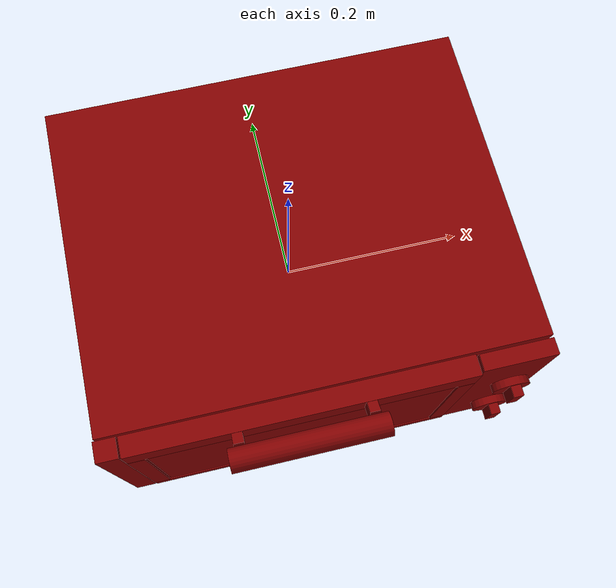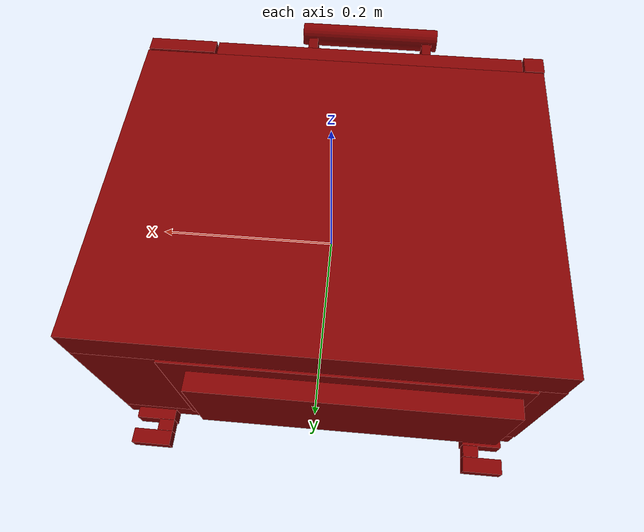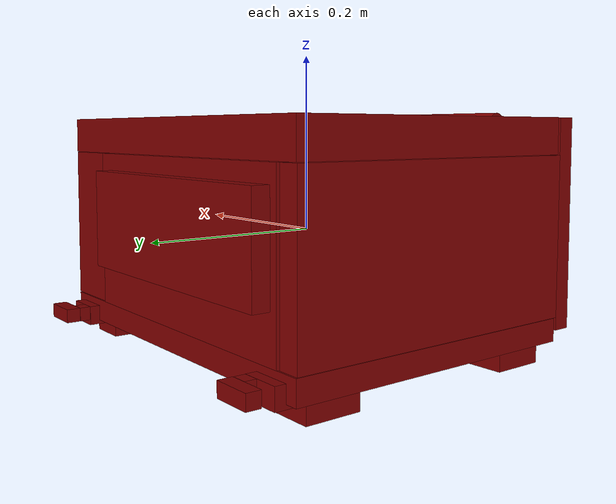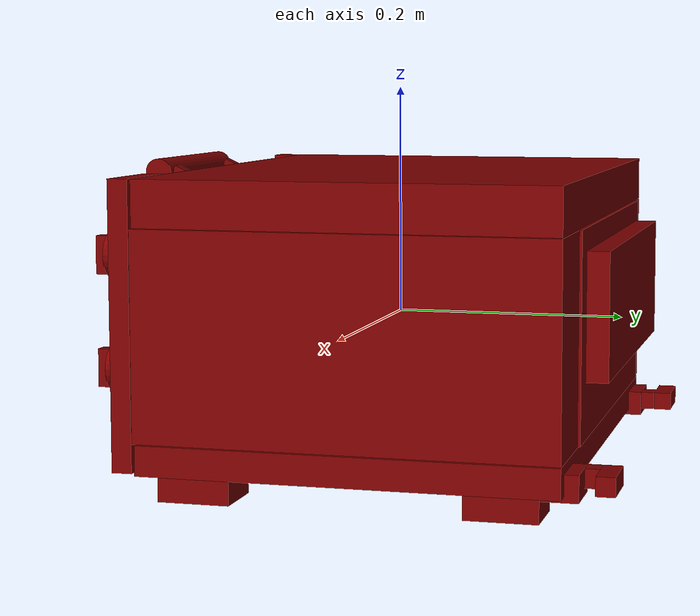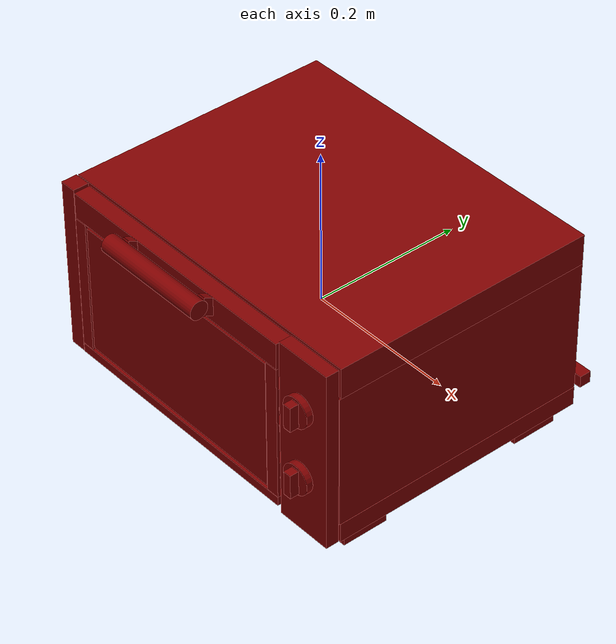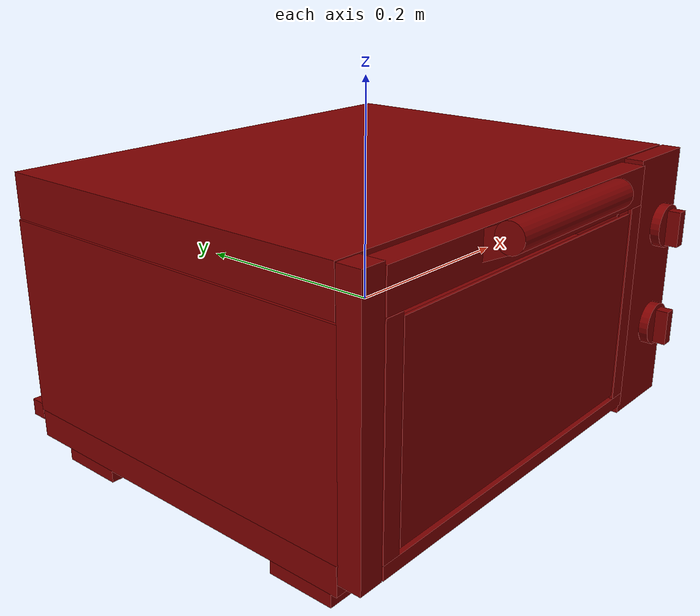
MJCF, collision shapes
<?xml version='1.0' encoding='UTF-8'?>
<mujoco model="model">
  <compiler angle="radian"/>
  <asset>
    <mesh file="visuals/Body001.obj" name="Body001_vis"/>
    <mesh file="visuals/Door001.obj" name="Door001_vis"/>
    <mesh file="visuals/Door001_Clear.obj" name="Door001_Clear_vis"/>
    <mesh file="visuals/Knob001.obj" name="Knob001_vis"/>
    <mesh file="visuals/Knob002.obj" name="Knob002_vis"/>
    <mesh file="visuals/Shelf001.obj" name="Shelf001_vis"/>
    <mesh file="visuals/Shelf002.obj" name="Shelf002_vis"/>
    <texture file="visuals/T_BC001.png" name="Body001_material" type="2d"/>
    <material name="Body001_material" rgba="1 1 1 1.0" texture="Body001_material" shininess="0.6668214201927185" specular="1.5"/>
    <texture file="visuals/T_BC001.png" name="Door001_material" type="2d"/>
    <material name="Door001_material" rgba="1 1 1 1.0" texture="Door001_material" shininess="0.6668214201927185" specular="1"/>
    <texture file="visuals/T_BC001.png" name="Door001_Clear_material" type="2d"/>
    <material name="Door001_Clear_material" rgba="1 1 1 0.800000011920929" texture="Door001_Clear_material" shininess="0.6668214201927185" specular="0.3103448502657381"/>
    <texture file="visuals/T_BC001.png" name="Knob001_material" type="2d"/>
    <material name="Knob001_material" rgba="1 1 1 1.0" texture="Knob001_material" shininess="0.6668214201927185" specular="0.3103448502657381"/>
    <texture file="visuals/T_BC001.png" name="Knob002_material" type="2d"/>
    <material name="Knob002_material" rgba="1 1 1 1.0" texture="Knob002_material" shininess="0.6668214201927185" specular="0.3103448502657381"/>
    <texture file="visuals/T_BC001.png" name="Shelf001_material" type="2d"/>
    <material name="Shelf001_material" rgba="1 1 1 1.0" texture="Shelf001_material" shininess="0.6668214201927185" specular="2"/>
    <texture file="visuals/T_BC001.png" name="Shelf002_material" type="2d"/>
    <material name="Shelf002_material" rgba="1 1 1 1.0" texture="Shelf002_material" shininess="0.6668214201927185" specular="2"/>
  </asset>
  <default>
    <default class="visual">
      <geom conaffinity="0" contype="0" group="1" type="mesh"/>
    </default>
    <default class="collision">
      <geom group="0" rgba="0.5 0 0 0.5"/>
    </default>
    <default class="spawn">
      <geom group="0" rgba="1 1 1 0.5" contype="0" conaffinity="0"/>
      <site group="0" rgba="1 1 1 0.5"/>
    </default>
    <default class="region">
      <geom group="1" conaffinity="0" contype="0" rgba="0 1 0 0"/>
    </default>
  </default>
  <worldbody>
    <body>
      <body name="object">
        <geom mesh="Body001_vis" type="mesh" solimp="0.998 0.998 0.001" solref="0.001 1" density="100" friction="0.95 0.3 0.1" class="visual" material="Body001_material"/>
        <geom class="collision" type="box" pos="0.0004402888298500329 0.010045657865703106 0.10885252803564072" size="0.22454264760017395 0.17522424459457397 0.01976315677165985" quat="1.0 0.0 0.0 0.0"/>
        <geom class="collision" type="box" pos="0.0004402888298500329 0.010045657865703106 -0.10062731802463531" size="0.22454264760017395 0.17522424459457397 0.012706412933766842" quat="1.0 0.0 0.0 0.0"/>
        <geom class="collision" type="box" pos="-0.18890202045440674 -0.11935637891292572 -0.1252499371767044" size="0.02434260956943035 0.03055659867823124 0.011036461219191551" quat="1.0 0.0 0.0 0.0"/>
        <geom class="collision" type="box" pos="-0.18890202045440674 0.13585886359214783 -0.125095397233963" size="0.02434260956943035 0.03055659867823124 0.010881921276450157" quat="1.0 0.0 0.0 0.0"/>
        <geom class="collision" type="box" pos="0.18905308842658997 0.13585886359214783 -0.125095397233963" size="0.02434260956943035 0.03055659867823124 0.010881921276450157" quat="1.0 0.0 0.0 0.0"/>
        <geom class="collision" type="box" pos="0.18905308842658997 -0.11935637891292572 -0.1252499371767044" size="0.02434260956943035 0.03055659867823124 0.011036461219191551" quat="1.0 0.0 0.0 0.0"/>
        <geom class="collision" type="box" pos="0.18555918335914612 0.0089851263910532 0.0007319003343582153" size="0.03942372649908066 0.1762847751379013 0.0876837819814682" quat="1.0 0.0 0.0 0.0"/>
        <geom class="collision" type="box" pos="-0.21336719393730164 0.0089851263910532 0.0007318967254832387" size="0.011907530017197132 0.1762847751379013 0.0876837819814682" quat="1.0 0.0 0.0 0.0"/>
        <geom class="collision" type="box" pos="-0.02708853967487812 0.1616283506155014 0.0007318967254832387" size="0.17258717119693756 0.025910113006830215 0.0876837819814682" quat="1.0 0.0 0.0 0.0"/>
        <geom class="collision" type="box" pos="0.1894703209400177 0.18198078870773315 -0.10667018592357635" size="0.021808959543704987 0.015137911774218082 0.011139695532619953" quat="1.0 0.0 0.0 0.0"/>
        <geom class="collision" type="box" pos="0.1894703209400177 0.21774496138095856 -0.10345733165740967" size="0.021808959543704987 0.00792873464524746 0.007926847785711288" quat="1.0 0.0 0.0 0.0"/>
        <geom class="collision" type="box" pos="0.17624805867671967 0.2034703940153122 -0.10345733165740967" size="0.008586686104536057 0.006191295105963945 0.007926847785711288" quat="1.0 0.0 0.0 0.0"/>
        <geom class="collision" type="box" pos="-0.17602120339870453 0.2034703940153122 -0.10345733165740967" size="0.008586686104536057 0.006191295105963945 0.007926847785711288" quat="1.0 0.0 0.0 0.0"/>
        <geom class="collision" type="box" pos="-0.1887224018573761 0.2179938405752182 -0.10345733165740967" size="0.021808959543704987 0.00792873464524746 0.007926847785711288" quat="1.0 0.0 0.0 0.0"/>
        <geom class="collision" type="box" pos="-0.1887224018573761 0.18198078870773315 -0.10667018592357635" size="0.021808959543704987 0.015137911774218082 0.011139695532619953" quat="1.0 0.0 0.0 0.0"/>
        <geom class="collision" type="box" pos="-0.2143566906452179 -0.17723454535007477 0.013637062162160873" size="0.010918035171926022 0.01031876727938652 0.11492250114679337" quat="1.0 0.0 0.0 0.0"/>
        <geom class="collision" type="box" pos="0.1867937594652176 -0.1765420138835907 0.008498180657625198" size="0.03787625953555107 0.008540074340999126 0.12006138265132904" quat="1.0 0.0 0.0 0.0"/>
        <geom class="collision" type="box" pos="-0.1954219490289688 -0.0036159383598715067 -0.025887541472911835" size="0.005505953915417194 0.1272565871477127 0.00450934749096632" quat="1.0 0.0 0.0 0.0"/>
        <geom class="collision" type="box" pos="-0.1954219490289688 -0.0036159383598715067 0.04098421335220337" size="0.005505953915417194 0.1272565871477127 0.00592554546892643" quat="1.0 0.0 0.0 0.0"/>
        <geom class="collision" type="box" pos="0.14067420363426208 -0.0036159383598715067 0.04098421335220337" size="0.005505953915417194 0.1272565871477127 0.00592554546892643" quat="1.0 0.0 0.0 0.0"/>
        <geom class="collision" type="box" pos="0.14067420363426208 -0.0036159383598715067 -0.025887541472911835" size="0.005505953915417194 0.1272565871477127 0.00450934749096632" quat="1.0 0.0 0.0 0.0"/>
        <geom class="collision" type="box" pos="0.1404481828212738 -0.12228400260210037 -0.06994109600782394" size="0.005731981247663498 0.008588536642491817 0.01425912231206894" quat="1.0 0.0 0.0 0.0"/>
        <geom class="collision" type="box" pos="-0.19614183902740479 -0.12228400260210037 -0.06994109600782394" size="0.005731981247663498 0.008588536642491817 0.01425912231206894" quat="1.0 0.0 0.0 0.0"/>
        <geom class="collision" type="box" pos="-0.0279858261346817 -0.12210918962955475 -0.07012439519166946" size="0.16276955604553223 0.005464079324156046 0.005500618368387222" quat="1.0 0.0 0.0 0.0"/>
        <geom class="collision" type="box" pos="-0.0279858261346817 0.11244776844978333 -0.07012439519166946" size="0.16276955604553223 0.007923397235572338 0.005500618368387222" quat="1.0 0.0 0.0 0.0"/>
        <geom class="collision" type="box" pos="-0.19614183902740479 0.1122729554772377 -0.06994109600782394" size="0.005731981247663498 0.006129218265414238 0.01425912231206894" quat="1.0 0.0 0.0 0.0"/>
        <geom class="collision" type="box" pos="0.1404481828212738 0.1122729554772377 -0.06994109600782394" size="0.005731981247663498 0.011047854088246822 0.01425912231206894" quat="1.0 0.0 0.0 0.0"/>
        <geom class="collision" type="box" pos="-0.03499678522348404 0.19661979377269745 0.015569886192679405" size="0.1559271663427353 0.00983437616378069 0.05393679067492485" quat="1.0 0.0 0.0 0.0"/>
        <body name="Door001">
          <joint axis="1.0 0.0 0.0" pos="-0.027686558663845062 -0.16469235718250275 -0.11179716140031815" limited="true" name="Door001_joint" range="0.0 1.5707963267948966" type="hinge" damping="1" frictionloss="1" armature=".01" stiffness="0.4" springref="-0.4"/>
          <geom mesh="Door001_vis" type="mesh" solimp="0.998 0.998 0.001" solref="0.001 1" density="100" friction="0.95 0.3 0.1" class="visual" material="Door001_material"/>
          <geom class="collision" type="box" pos="-0.19373668730258942 -0.18622271716594696 0.0010078526102006435" size="0.008691618219017982 0.0017727639060467482 0.08988409489393234" quat="1.0 0.0 0.0 0.0"/>
          <geom class="collision" type="box" pos="0.13829100131988525 -0.18622271716594696 0.0010078526102006435" size="0.008691618219017982 0.0017727639060467482 0.08988409489393234" quat="1.0 0.0 0.0 0.0"/>
          <geom class="collision" type="box" pos="-0.02755201980471611 -0.17721495032310486 -0.09515944123268127" size="0.1745843142271042 0.01078052818775177 0.006002516485750675" quat="1.0 0.0 0.0 0.0"/>
          <geom class="collision" type="box" pos="-0.02755201980471611 -0.17708101868629456 0.10838085412979126" size="0.1745843142271042 0.010646594688296318 0.017008749768137932" quat="1.0 0.0 0.0 0.0"/>
          <geom class="collision" type="cylinder" pos="-0.027476372197270393 -0.21209047734737396 0.12428169697523117" size="0.011990537866950035 0.07735488563776016" quat="0.4999999701976776 0.5 0.5 0.5"/>
          <geom class="collision" type="box" pos="0.037739258259534836 -0.19244787096977234 0.1149686947464943" size="0.005254700314253569 0.01107038464397192 0.011967102997004986" quat="0.8413723111152649 0.5404559373855591 1.2000532509616392e-16 -3.521320069738721e-24"/>
          <geom class="collision" type="box" pos="-0.09309419244527817 -0.19244787096977234 0.1149686947464943" size="0.005254700314253569 0.01107038464397192 0.011967102997004986" quat="0.8413723111152649 0.5404559373855591 -1.2000532509616392e-16 -5.6228522265651906e-24"/>
          <body name="Door001_Clear">
            <geom mesh="Door001_Clear_vis" type="mesh" solimp="0.998 0.998 0.001" solref="0.001 1" density="100" friction="0.95 0.3 0.1" class="visual" material="Door001_Clear_material"/>
            <geom class="collision" type="box" pos="-0.02761196903884411 -0.18577668070793152 0.0010078526102006435" size="0.15534622967243195 0.0013502479996532202 0.08596353977918625" quat="1.0 0.0 0.0 0.0"/>
          </body>
        </body>
        <body name="Knob001">
          <joint axis="0.0 1.0 0.0" pos="0.18851451575756073 -0.19621284306049347 0.06444986164569855" limited="true" name="Knob001_joint" range="0.0 5.672320068981571" type="hinge" damping="0.05" armature="0.001"/>
          <geom mesh="Knob001_vis" type="mesh" solimp="0.998 0.998 0.001" solref="0.001 1" density="100" friction="0.95 0.3 0.1" class="visual" material="Knob001_material"/>
          <geom class="collision" type="cylinder" pos="0.18856821954250336 -0.19308550655841827 0.06455542147159576" size="0.019619394093751907 0.004214211367070675" quat="0.5 0.5 0.4999999701976776 -0.5"/>
          <geom class="collision" type="box" pos="0.18915902078151703 -0.20227079093456268 0.06368156522512436" size="0.005417246371507645 0.006732615176588297 0.015998639166355133" quat="0.002057745587080717 0.0 0.9999978542327881 0.0"/>
        </body>
        <body name="Knob002">
          <joint axis="0.0 1.0 0.0" pos="0.1876315027475357 -0.19621284306049347 -0.029810750856995583" limited="true" name="Knob002_joint" range="0.0 3.839724354387525" type="hinge" damping="0.05" armature="0.001"/>
          <geom mesh="Knob002_vis" type="mesh" solimp="0.998 0.998 0.001" solref="0.001 1" density="100" friction="0.95 0.3 0.1" class="visual" material="Knob002_material"/>
          <geom class="collision" type="cylinder" pos="0.18768520653247833 -0.19308550655841827 -0.029705191031098366" size="0.019619394093751907 0.004214211367070675" quat="0.5 0.5 0.4999999701976776 -0.5"/>
          <geom class="collision" type="box" pos="0.188276007771492 -0.20227079093456268 -0.03057904727756977" size="0.005417246371507645 0.006732615176588297 0.015998639166355133" quat="0.002057745587080717 0.0 0.9999978542327881 0.0"/>
        </body>
        <body name="Shelf001">
          <joint axis="0.0 -1.0 0.0" pos="-0.02741917222738266 -0.005376391112804413 0.050547681748867035" limited="true" name="Shelf001_joint" range="0.0 0.32" type="slide" damping="1" frictionloss="1" armature=".01" stiffness="0.05"/>
          <geom mesh="Shelf001_vis" type="mesh" solimp="0.998 0.998 0.001" solref="0.001 1" density="100" friction="0.95 0.3 0.1" class="visual" material="Shelf001_material"/>
          <geom class="collision" type="box" pos="-0.0274185948073864 -0.004809289705008268 0.05070587247610092" size="0.1729416847229004 0.1401827484369278 0.0028072127606719732" quat="1.0 0.0 0.0 0.0"/>
        </body>
        <body name="Shelf002">
          <joint axis="0.0 -1.0 0.0" pos="-0.02741917222738266 -0.005376391112804413 -0.01794910803437233" limited="true" name="Shelf002_joint" range="0.0 0.32" type="slide" damping="1" frictionloss="1" armature=".01" stiffness="0.05"/>
          <geom mesh="Shelf002_vis" type="mesh" solimp="0.998 0.998 0.001" solref="0.001 1" density="100" friction="0.95 0.3 0.1" class="visual" material="Shelf002_material"/>
          <geom class="collision" type="box" pos="-0.0274185948073864 -0.004809289705008268 -0.018004778772592545" size="0.1729416847229004 0.1401827484369278 0.0028072127606719732" quat="1.0 0.0 0.0 0.0"/>
        </body>
        <geom class="region" name="reg_main" type="box" pos="-3.725290298461914e-09 0.0187099426984787 -0.0041941311210393906" size="0.22663886845111847 0.20766109228134155 0.13424013555049896"/>
        <geom class="region" name="reg_int" type="box" pos="-0.02776021510362625 -0.015501737594604492 0.0009381957352161407" size="0.17401405423879623 0.15169164538383484 0.08916934207081795"/>
      </body>
    </body>
  </worldbody>
  <actuator>
    <motor name="Door001_joint_actuator" joint="Door001_joint" gear="50"/>
    <motor name="Knob001_joint_actuator" joint="Knob001_joint" gear="50"/>
    <motor name="Knob002_joint_actuator" joint="Knob002_joint" gear="50"/>
    <motor name="Shelf001_joint_actuator" joint="Shelf001_joint" gear="50"/>
    <motor name="Shelf002_joint_actuator" joint="Shelf002_joint" gear="50"/>
  </actuator>
</mujoco>
